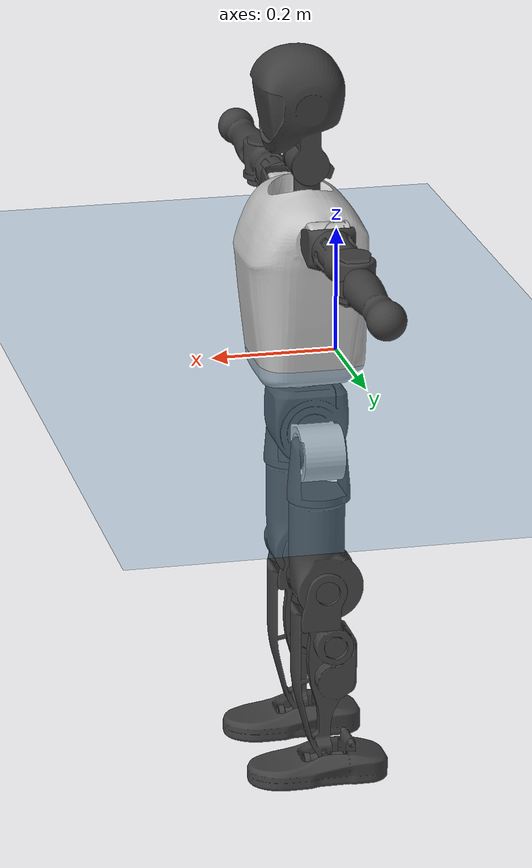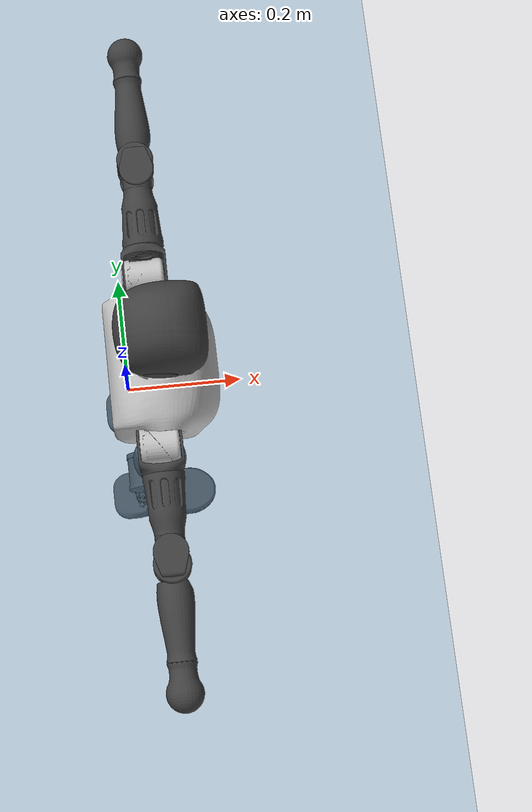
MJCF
<mujoco model="T1">
  <compiler angle="radian" assetdir="assets" balanceinertia="true" inertiafromgeom="false"/>

  <option timestep="0.005" density="1.2" viscosity="2e-05"/>

  <size nkey="1"/>

  <visual>
    <quality shadowsize="8192"/>
    <map shadowclip="0.5"/>
  </visual>

  <default>
    <default class="/">
      <joint armature="0.01" damping="0.01" frictionloss="0.1"/>
      <geom contype="0" conaffinity="0" group="1" solref="-1000 -80"/>
      <site size="0.01 0.005 0.005" group="5"/>
      <general forcelimited="true" biastype="affine" gainprm="25" biasprm="0 -25 -0.6"/>
      <default class="t1">
        <geom rgba="0.25 0.25 0.25 1"/>
        <default class="visual">
          <geom type="mesh" group="2"/>
        </default>
        <default class="collision">
          <geom group="3"/>
        </default>
        <default class="foot">
          <geom size="0.1115 0.05 0.015" type="box" condim="6" group="4" priority="1" solimp="0.015 1 0.015"/>
        </default>
        <default class="reward_collision_sphere">
          <geom group="5" rgba="1 0 0 1"/>
        </default>
      </default>
    </default>
  </default>

  <asset>
    <texture type="skybox" colorspace="auto" name="//unnamed_texture_0" builtin="gradient" rgb1="0.95 0.95 0.95" rgb2="0.95 0.95 0.95" width="100" height="600"/>
    <texture type="2d" colorspace="auto" name="texplane" builtin="checker" rgb1="0.345 0.575 0.748" rgb2="0.345 0.575 0.748" markrgb="1 1 1" width="512" height="512"/>
    <material name="MatPlane" class="/" texture="texplane" texuniform="true" texrepeat="2 2" specular="0.9"/>
    <mesh name="Trunk" class="/" file="Trunk.stl"/>
    <mesh name="H1" class="/" file="H1.stl"/>
    <mesh name="H2" class="/" file="H2.stl"/>
    <mesh name="AL1" class="/" file="AL1.stl"/>
    <mesh name="AL2" class="/" file="AL2.stl"/>
    <mesh name="AL3" class="/" file="AL3.stl"/>
    <mesh name="left_hand_link" class="/" file="left_hand_link.stl"/>
    <mesh name="AR1" class="/" file="AR1.stl"/>
    <mesh name="AR2" class="/" file="AR2.stl"/>
    <mesh name="AR3" class="/" file="AR3.stl"/>
    <mesh name="right_hand_link" class="/" file="right_hand_link.stl"/>
    <mesh name="Waist" class="/" file="Waist.stl"/>
    <mesh name="Hip_Pitch_Left" class="/" file="Hip_Pitch_Left.stl"/>
    <mesh name="Hip_Roll_Left" class="/" file="Hip_Roll_Left.stl"/>
    <mesh name="Hip_Yaw_Left" class="/" file="Hip_Yaw_Left.stl"/>
    <mesh name="Shank_Left" class="/" file="Shank_Left.stl"/>
    <mesh name="Ankle_Cross_Left" class="/" file="Ankle_Cross_Left.stl"/>
    <mesh name="left_foot_link" class="/" file="left_foot_link.stl"/>
    <mesh name="Hip_Pitch_Right" class="/" file="Hip_Pitch_Right.stl"/>
    <mesh name="Hip_Roll_Right" class="/" file="Hip_Roll_Right.stl"/>
    <mesh name="Hip_Yaw_Right" class="/" file="Hip_Yaw_Right.stl"/>
    <mesh name="Shank_Right" class="/" file="Shank_Right.stl"/>
    <mesh name="Ankle_Cross_Right" class="/" file="Ankle_Cross_Right.stl"/>
    <mesh name="right_foot_link" class="/" file="right_foot_link.stl"/>
  </asset>

  <worldbody>
    <geom name="floor" class="/" size="100 100 0.125" type="plane" group="0" material="MatPlane"/>
    <light name="toplight_shadow" class="/" pos="0 0 5" dir="0.0990148 0.0990148 -0.990148" type="directional" ambient="0.04 0.04 0.04" diffuse="0.55 0.55 0.55" specular="0.12 0.12 0.12"/>
    <light name="toplight_fill" class="/" pos="0 0 5" dir="0.0990148 0.0990148 -0.990148" type="directional" castshadow="false" ambient="0.04 0.04 0.04" diffuse="0.3 0.3 0.3" specular="0.08 0.08 0.08"/>
    <body name="trunk" childclass="t1" pos="0.000627431 -0.00172351 8.83167e-05" quat="1 -8.3254e-05 0.000133206 0.000103091">
      <inertial pos="0.0412534 0.000275246 0.106865" quat="0.999936 0.000441323 -0.0111956 0.00125397" mass="7.72967" diaginertia="0.0218202 0.040012 0.0611391"/>
      <joint name="//unnamed_joint_0" type="free" armature="0" damping="0" frictionloss="0"/>
      <geom name="//unnamed_geom_1" class="visual" rgba="0.76 0.76 0.76 1" mesh="Trunk"/>
      <geom name="//unnamed_geom_2" class="collision" size="0.0662032 0.0882709 0.132406" pos="0.0451766 0 0.122462" type="box"/>
      <geom name="//unnamed_geom_3" class="reward_collision_sphere" size="0.101511" pos="0.0451766 0 0.102051"/>
      <geom name="//unnamed_geom_4" class="reward_collision_sphere" size="0.0132406" pos="0.0451766 0.0743469 0"/>
      <geom name="//unnamed_geom_5" class="reward_collision_sphere" size="0.0132406" pos="0.0451766 -0.0743469 0"/>
      <geom name="//unnamed_geom_6" class="reward_collision_sphere" size="0.0132406" pos="0.0451766 0.0935896 0.183692"/>
      <geom name="//unnamed_geom_7" class="reward_collision_sphere" size="0.0132406" pos="0.0451766 -0.0935896 0.183692"/>
      <site name="imu" pos="-0.00352305 -0.0111639 0.00245548" size="0.00882709"/>
      <camera name="track" pos="0 -1.74934 0" quat="0.707107 0.707107 0 0" mode="trackcom"/>
      <camera name="ego_camera" pos="0.091859 0 0.428616" quat="-0.5 -0.5 0.5 0.5"/>
      <body name="H1" pos="0.0459315 2.54054e-05 0.247721" quat="1 -5.39608e-06 -8.40907e-06 -4.76034e-05">
        <inertial pos="-0.001431 -0.00113591 0.0590408" quat="0.76307 -0.00237452 -0.00532546 0.64629" mass="0.299812" diaginertia="5.73968e-05 0.000114671 0.000163246"/>
        <joint name="AAHead_yaw" pos="0 0 0" axis="0.00848663 0.00710145 0.999939" stiffness="0.00302758" range="-1.58621 1.56137" armature="0.00892207" damping="0.0106456" frictionloss="0.083099"/>
        <geom name="//unnamed_geom_8" class="visual" mesh="H1"/>
        <body name="H2" pos="0.00124965 0.000352876 0.062795" quat="1 -1.96061e-05 2.88707e-05 -0.000103953">
          <inertial pos="0.00554011 -0.00175137 0.100998" quat="0.988165 0.105176 -0.0761263 -0.0816873" mass="0.425197" diaginertia="0.000486329 0.000934694 0.00187273"/>
          <joint name="Head_pitch" pos="0 0 0" axis="0.00495406 -0.999962 0.0071166" range="-1.21168 0.348808" armature="0.00851221" damping="0.00584502" frictionloss="0.0917994"/>
          <geom name="//unnamed_geom_9" class="visual" mesh="H2"/>
          <geom name="//unnamed_geom_10" class="collision" size="0.0706167" pos="0.00752943 0 0.112257"/>
          <geom name="//unnamed_geom_11" class="reward_collision_sphere" size="0.0794438" pos="0.0150589 0 0.102051"/>
        </body>
      </body>
      <body name="AL1" pos="0.0455632 0.0938871 0.223" quat="1 -0.000306035 0.000371183 -0.000382333">
        <inertial pos="-0.000755921 0.0381509 -0.00254792" quat="0.499766 0.499429 -0.497172 0.503611" mass="0.3759" diaginertia="0.00034009 0.000680214 0.000336705"/>
        <joint name="Left_Shoulder_Pitch" pos="0 0 0" axis="0.00364777 0.999928 0.0114596" range="-3.30867 1.23421" armature="0.00929237" damping="0.00990345" frictionloss="0.0874768"/>
        <geom name="//unnamed_geom_12" class="visual" rgba="0.76 0.76 0.76 1" mesh="AL1"/>
        <body name="AL2" pos="0.00123854 0.0407318 -0.001642" quat="0.999999 0.000670651 -0.000197281 -0.000934312">
          <inertial pos="0.00350711 0.0304972 -0.000105141" quat="0.488004 0.511438 -0.488298 0.511711" mass="0.108224" diaginertia="9.77699e-05 0.000175743 0.000192518"/>
          <joint name="Left_Shoulder_Roll" pos="0 0 0" axis="-0.999918 0.00546921 -0.0116177" range="-1.52559 1.75995" armature="0.00914728" damping="0" frictionloss="0.098291"/>
          <geom name="//unnamed_geom_13" class="visual" mesh="AL2"/>
          <body name="AL3" pos="0.00208933 0.0558933 0.000887533" quat="0.999999 -0.000904535 0.000558645 5.62663e-05">
            <inertial pos="-0.000331951 0.0727002 0.000644025" quat="0.707014 0.707199 -0.00110465 1.48569e-05" mass="0.724709" diaginertia="0.00312124 0.00672115 0.000665457"/>
            <joint name="Left_Elbow_Pitch" pos="0 0 0" axis="0.00797213 -0.999966 -0.00212281" range="-2.22111 2.21755" armature="0.0099121" damping="0" frictionloss="0.0947035"/>
            <geom name="//unnamed_geom_14" class="visual" mesh="AL3"/>
            <geom name="//unnamed_geom_15" class="collision" size="0.0264813 0.0662032" pos="0 0.0437335 0" quat="0.707105 0.707108 0 0" type="cylinder"/>
            <geom name="//unnamed_geom_16" class="reward_collision_sphere" size="0.0317775"/>
            <body name="left_hand_link" pos="0.000683445 0.128999 -0.00138989" quat="1 -0.000285553 0.000314355 0.000165162">
              <inertial pos="-0.000196217 0.095836 -0.00126367" quat="0.708056 0.706156 -0.000193179 -5.1146e-05" mass="0.225259" diaginertia="0.00196425 0.0041773 0.00023482"/>
              <joint name="Left_Elbow_Yaw" pos="0 0 0" axis="0.00161696 0.00751614 0.99997" stiffness="0.000905266" range="-2.4452 0.00628257" armature="0.00934432" damping="0.012357" frictionloss="0.0898928"/>
              <geom name="//unnamed_geom_17" class="visual" mesh="left_hand_link"/>
              <geom name="//unnamed_geom_18" class="collision" size="0.0264813 0.077237" pos="0 0.113707 0" quat="0.707105 0.707108 0 0" type="cylinder"/>
              <geom name="//unnamed_geom_19" class="reward_collision_sphere" size="0.0441354"/>
              <geom name="//unnamed_geom_20" class="reward_collision_sphere" size="0.0308948" pos="0 0.0962136 0"/>
              <geom name="//unnamed_geom_21" class="reward_collision_sphere" size="0.0308948" pos="0 0.188054 0"/>
            </body>
          </body>
        </body>
      </body>
      <body name="AR1" pos="0.0434739 -0.0931978 0.223026" quat="1 2.66579e-05 0.000512164 -1.7746e-05">
        <inertial pos="-0.000232259 -0.0418099 0.00226022" quat="0.502376 0.495694 -0.50544 0.496423" mass="0.364124" diaginertia="0.000320662 0.000656016 0.000326271"/>
        <joint name="Right_Shoulder_Pitch" pos="0 0 0" axis="0.000984323 -0.999994 -0.00343728" range="-1.20512 3.3101" armature="0.00860804" damping="0.00112893" frictionloss="0.0844129"/>
        <geom name="//unnamed_geom_22" class="visual" rgba="0.76 0.76 0.76 1" mesh="AR1"/>
        <body name="AR2" pos="9.14112e-05 -0.0382042 0.000178963" quat="1 -0.000296992 0.000145433 4.56347e-05">
          <inertial pos="0.00329858 -0.0332283 -0.0021467" quat="0.511017 0.48763 -0.512259 0.488538" mass="0.108622" diaginertia="9.45493e-05 0.000169119 0.000187992"/>
          <joint name="Right_Shoulder_Roll" pos="0 0 0" axis="-0.999944 -0.0104925 0.00148672" stiffness="0.010172" range="-1.71874 1.61565" armature="0.00893426" damping="0" frictionloss="0.0891915"/>
          <geom name="//unnamed_geom_23" class="visual" mesh="AR2"/>
          <body name="AR3" pos="0.000830148 -0.0535126 -0.000652742" quat="1 5.35612e-05 4.30497e-05 7.58895e-05">
            <inertial pos="-0.00119693 -0.0748613 0.000355621" quat="0.707822 0.706389 0.00110324 -0.00123364" mass="0.6978" diaginertia="0.00308947 0.00657408 0.000681023"/>
            <joint name="Right_Elbow_Pitch" pos="0 0 0" axis="-0.00425091 0.999989 0.00179761" range="-2.27128 2.26278" armature="0.00988307" damping="0.0102369" frictionloss="0.0780044"/>
            <geom name="//unnamed_geom_24" class="visual" mesh="AR3"/>
            <geom name="//unnamed_geom_25" class="collision" size="0.0264813 0.0662032" pos="0 -0.0437335 0" quat="0.707105 0.707108 0 0" type="cylinder"/>
            <geom name="//unnamed_geom_26" class="reward_collision_sphere" size="0.0317775"/>
            <body name="right_hand_link" pos="-0.000465068 -0.128417 -0.000441033" quat="1 -0.000195834 0.000159304 0.00035308">
              <inertial pos="0.000529383 -0.096358 -0.00177693" quat="0.707775 0.70633 -0.0123116 0.000992846" mass="0.232781" diaginertia="0.00192054 0.00415987 0.000239712"/>
              <joint name="Right_Elbow_Yaw" pos="0 0 0" axis="-0.000212204 -0.00013936 1" range="-0.0479265 2.48914" armature="0.00899895" damping="0.012509" frictionloss="0.0836168"/>
              <geom name="//unnamed_geom_27" class="visual" mesh="right_hand_link"/>
              <geom name="//unnamed_geom_28" class="collision" size="0.0264813 0.077237" pos="0 -0.113707 0" quat="0.707105 0.707108 0 0" type="cylinder"/>
              <geom name="//unnamed_geom_29" class="reward_collision_sphere" size="0.0441354"/>
              <geom name="//unnamed_geom_30" class="reward_collision_sphere" size="0.0308948" pos="0 -0.0962136 0"/>
              <geom name="//unnamed_geom_31" class="reward_collision_sphere" size="0.0308948" pos="0 -0.188054 0"/>
            </body>
          </body>
        </body>
      </body>
      <body name="Waist" pos="0.0468889 -0.0011999 -0.118075" quat="1 7.83912e-06 9.91052e-05 7.91966e-05">
        <inertial pos="0.000259073 -0.000393137 0.00764191" quat="0.983643 0.000664885 -0.180109 0.00265302" mass="1.76132" diaginertia="0.0012712 0.00270278 0.00527093"/>
        <joint name="Waist" pos="0 0 0" axis="0.00455773 -0.0108149 0.999931" range="-1.57194 1.56083" armature="0.00845237" damping="0.021979" frictionloss="0.0795901"/>
        <geom name="//unnamed_geom_32" class="visual" mesh="Waist"/>
        <body name="Hip_Pitch_Left" pos="0.00181837 0.0943703 0.000504306" quat="1 1.93724e-05 -0.000174934 0.00023606">
          <inertial pos="0.00318832 -0.0069424 -0.0209225" quat="0.974719 0.221767 0.0272432 0.000681964" mass="0.709503" diaginertia="0.000438888 0.000744282 0.00137126"/>
          <joint name="Left_Hip_Pitch" pos="0 0 0" axis="0.000223093 0.999999 0.00125922" range="-1.7927 1.61769" armature="0.00866301" damping="0" frictionloss="0.0909843"/>
          <geom name="//unnamed_geom_33" class="visual" rgba="0.76 0.76 0.76 1" mesh="Hip_Pitch_Left"/>
          <body name="Hip_Roll_Left" pos="0.00200508 -0.00139508 -0.0186035" quat="1 -0.00011606 0.000194444 -8.53058e-05">
            <inertial pos="0.000263745 0.00184367 -0.0549587" quat="0.705269 -0.00359509 -0.00116483 0.70893" mass="0.252887" diaginertia="0.000421095 0.000736301 0.000550234"/>
            <joint name="Left_Hip_Roll" pos="0 0 0" axis="-0.999986 -0.00500167 0.00188601" range="-1.57107 0.192776" armature="0.00910023" damping="0.00702749" frictionloss="0.0830438"/>
            <geom name="//unnamed_geom_34" class="visual" mesh="Hip_Roll_Left"/>
            <geom name="//unnamed_geom_35" class="reward_collision_sphere" size="0.048549"/>
            <body name="Hip_Yaw_Left" pos="0.000869075 0.000900629 -0.0828395" quat="1 -0.00029518 5.26913e-05 5.41316e-05">
              <inertial pos="-0.00489094 -0.000258061 -0.0910563" quat="0.698604 -0.0328453 -0.0436078 0.713423" mass="1.46073" diaginertia="0.00621989 0.0128896 0.0029043"/>
              <joint name="Left_Hip_Yaw" pos="0 0 0" axis="-0.00932162 0.00309152 -0.999952" range="-1.01131 0.975307" armature="0.00868325" damping="0.00361619" frictionloss="0.0887201"/>
              <geom name="//unnamed_geom_36" class="visual" mesh="Hip_Yaw_Left"/>
              <geom name="//unnamed_geom_37" class="collision" size="0.0441354 0.0706167" type="cylinder"/>
              <body name="Shank_Left" pos="-0.00843044 0.00190308 -0.139531" quat="1 3.96049e-05 -5.33754e-06 2.09153e-05">
                <inertial pos="-0.00540196 -0.00219066 -0.126826" quat="0.997532 0.00175816 -0.0241941 0.0658956" mass="1.1806" diaginertia="0.0086072 0.0176744 0.00210844"/>
                <joint name="Left_Knee_Pitch" pos="0 0 0" axis="-0.00563497 0.999982 -0.00221163" range="-0.00116859 2.34312" armature="0.00842111" damping="0.0106069" frictionloss="0.099835"/>
                <geom name="//unnamed_geom_38" class="visual" mesh="Shank_Left"/>
                <geom name="//unnamed_geom_39" class="collision" size="0.0441354 0.0662032" pos="0 0 -0.122462" type="cylinder"/>
                <geom name="//unnamed_geom_40" class="reward_collision_sphere" size="0.0573761"/>
                <body name="Ankle_Cross_Left" pos="-0.00133198 -0.00150551 -0.287142" quat="1 -3.26521e-05 4.4176e-05 7.9166e-05">
                  <inertial pos="-0.00312745 -0.000321594 -0.00779432" quat="0.44075 0.552389 0.552326 0.442201" mass="0.0479297" diaginertia="6.92739e-06 1.22987e-05 1.21513e-05"/>
                  <joint name="Left_Ankle_Pitch" pos="0 0 0" axis="0.0113004 0.999897 -0.0088096" range="-0.854174 0.369975" armature="0.00883483" damping="0.00767276" frictionloss="0.0893232"/>
                  <geom name="//unnamed_geom_41" class="visual" mesh="Ankle_Cross_Left"/>
                  <body name="left_foot_link" pos="-0.000572625 0.000132165 -0.0124904" quat="0.999999 -0.0013009 0.000314737 0.000104388">
                    <inertial pos="0.00225463 0.000411826 -0.00855078" quat="-0.00422649 0.619492 -0.00778369 0.784953" mass="0.46723" diaginertia="0.000647916 0.00121476 0.00236526"/>
                    <joint name="Left_Ankle_Roll" pos="0 0 0" axis="-0.999993 0.00371377 0.000745518" stiffness="0.0013212" range="-0.434148 0.437276" armature="0.0087774" damping="0.000680436" frictionloss="0.0846194"/>
                    <geom name="//unnamed_geom_42" class="visual" mesh="left_foot_link"/>
                    <geom name="left_foot" class="foot" size="0.105789 0.0418848 0.0121016" pos="0.00752943 0 -0.0153077"/>
                    <geom name="//unnamed_geom_44" class="reward_collision_sphere" size="0.0459009" pos="0.00752943 0 -0.0153077"/>
                    <geom name="//unnamed_geom_45" class="reward_collision_sphere" size="0.0264813" pos="0.0715296 -0.0201174 -0.0153077"/>
                    <geom name="//unnamed_geom_46" class="reward_collision_sphere" size="0.0264813" pos="-0.052706 -0.0201174 -0.0153077"/>
                    <site name="left_foot" class="foot" pos="0.00752943 0 -0.0153077" size="0.00882709"/>
                  </body>
                </body>
              </body>
            </body>
          </body>
        </body>
        <body name="Hip_Pitch_Right" pos="-0.00227263 -0.09286 0.00092866" quat="1 0.000442071 -0.000548788 0.000490943">
          <inertial pos="6.28058e-05 0.00771961 -0.0163739" quat="0.973302 -0.2291 0.0138869 -0.0017137" mass="0.718645" diaginertia="0.000441846 0.000758125 0.00141004"/>
          <joint name="Right_Hip_Pitch" pos="0 0 0" axis="0.00413509 -0.999989 -0.00210471" stiffness="0.0026048" range="-1.57273 1.79145" armature="0.00862892" damping="0.000336263" frictionloss="0.0938909"/>
          <geom name="//unnamed_geom_47" class="visual" rgba="0.76 0.76 0.76 1" mesh="Hip_Pitch_Right"/>
          <body name="Hip_Roll_Right" pos="0.00178476 0.00110786 -0.0200062" quat="1 -1.0229e-05 4.22605e-05 -2.60039e-05">
            <inertial pos="-0.000942435 -0.000313546 -0.0563872" quat="0.707176 -0.00598875 -0.00599638 0.706987" mass="0.270089" diaginertia="0.000420635 0.00077266 0.000570848"/>
            <joint name="Right_Hip_Roll" pos="0 0 0" axis="-0.999989 -0.000556927 0.00471619" stiffness="0.00262412" range="-0.212683 1.58627" armature="0.00884746" damping="0.00514406" frictionloss="0.0881553"/>
            <geom name="//unnamed_geom_48" class="visual" mesh="Hip_Roll_Right"/>
            <geom name="//unnamed_geom_49" class="reward_collision_sphere" size="0.048549"/>
            <body name="Hip_Yaw_Right" pos="-2.30079e-05 -0.000269783 -0.0832332" quat="1 -0.000156043 0.00032939 -2.66301e-05">
              <inertial pos="-0.00484466 -0.00256686 -0.088678" quat="0.716033 -0.034086 -0.0323048 0.696485" mass="1.53963" diaginertia="0.00626188 0.0135581 0.00287417"/>
              <joint name="Right_Hip_Yaw" pos="0 0 0" axis="-0.00050693 0.00182963 -0.999998" stiffness="0.0100493" range="-0.989282 1.00057" armature="0.00769817" damping="0.00203002" frictionloss="0.0915318"/>
              <geom name="//unnamed_geom_50" class="visual" mesh="Hip_Yaw_Right"/>
              <geom name="//unnamed_geom_51" class="collision" size="0.0441354 0.0706167" type="cylinder"/>
              <body name="Shank_Right" pos="-0.00797346 -0.000893024 -0.136477" quat="1 -4.52875e-05 -3.92744e-05 -1.96019e-05">
                <inertial pos="-0.00202014 0.00231876 -0.126135" quat="0.999161 0.000633111 -0.0196034 -0.0359532" mass="1.26985" diaginertia="0.00907015 0.0186614 0.00223837"/>
                <joint name="Right_Knee_Pitch" pos="0 0 0" axis="0.00466397 -0.999987 -0.00190703" range="-2.34012 -0.00566978" armature="0.00835355" damping="0.00472371" frictionloss="0.0872697"/>
                <geom name="//unnamed_geom_52" class="visual" mesh="Shank_Right"/>
                <geom name="//unnamed_geom_53" class="collision" size="0.0441354 0.0662032" pos="0 0 -0.122462" type="cylinder"/>
                <geom name="//unnamed_geom_54" class="reward_collision_sphere" size="0.0573761"/>
                <body name="Ankle_Cross_Right" pos="0.000967396 -0.00142648 -0.285726" quat="1 -1.64917e-05 0.000392191 0.000266362">
                  <inertial pos="-0.00375911 0.000639638 -0.00786823" quat="0.443282 0.550964 0.550982 0.443124" mass="0.0492381" diaginertia="7.1371e-06 1.30854e-05 1.24929e-05"/>
                  <joint name="Right_Ankle_Pitch" pos="0 0 0" axis="0.0141466 -0.999897 -0.00261741" range="-0.331645 0.877936" armature="0.00851894" damping="0.00337723" frictionloss="0.0837289"/>
                  <geom name="//unnamed_geom_55" class="visual" mesh="Ankle_Cross_Right"/>
                  <body name="right_foot_link" pos="0.000404317 -0.00287416 -0.0106478" quat="1 -0.000243307 -3.52603e-05 0.000145432">
                    <inertial pos="0.00251792 7.2855e-05 -0.00847055" quat="-0.00479475 0.621005 0.00588096 0.78377" mass="0.47243" diaginertia="0.000672787 0.00121045 0.00241961"/>
                    <joint name="Right_Ankle_Roll" pos="0 0 0" axis="-0.999938 -0.00659038 -0.00902961" range="-0.442975 0.455212" armature="0.00848311" damping="0.00363844" frictionloss="0.077584"/>
                    <geom name="//unnamed_geom_56" class="visual" mesh="right_foot_link"/>
                    <geom name="right_foot" class="foot" size="0.100096 0.0418257 0.0129242" pos="0.00752943 0 -0.0153077"/>
                    <geom name="//unnamed_geom_58" class="reward_collision_sphere" size="0.0353083"/>
                    <geom name="//unnamed_geom_59" class="reward_collision_sphere" size="0.0264813" pos="0.00752943 0 -0.0153077"/>
                    <geom name="//unnamed_geom_60" class="reward_collision_sphere" size="0.0264813" pos="0.0715296 0.0201174 -0.0153077"/>
                    <geom name="//unnamed_geom_61" class="reward_collision_sphere" size="0.0264813" pos="-0.052706 0.0201174 -0.0153077"/>
                    <site name="right_foot" class="foot" pos="0.00752943 0 -0.0153077" size="0.00882709"/>
                  </body>
                </body>
              </body>
            </body>
          </body>
        </body>
      </body>
    </body>
  </worldbody>

  <contact>
    <pair class="/" geom1="floor" geom2="left_foot" name="//unnamed_contact_0"/>
    <pair class="/" geom1="floor" geom2="right_foot" name="//unnamed_contact_1"/>
  </contact>

  <actuator>
    <general name="AAHead_yaw" class="/" joint="AAHead_yaw" forcerange="-5.67864 5.67864" gainprm="22.6035" biasprm="0 -22.6035 -0.504817"/>
    <general name="Head_pitch" class="/" joint="Head_pitch" forcerange="-5.98901 5.98901" gainprm="22.6035" biasprm="0 -22.6035 -0.504817"/>
    <general name="Left_Shoulder_Pitch" class="/" joint="Left_Shoulder_Pitch" forcerange="-15.8716 15.8716" gainprm="22.6035" biasprm="0 -22.6035 -0.504817"/>
    <general name="Left_Shoulder_Roll" class="/" joint="Left_Shoulder_Roll" forcerange="-15.3087 15.3087" gainprm="22.6035" biasprm="0 -22.6035 -0.504817"/>
    <general name="Left_Elbow_Pitch" class="/" joint="Left_Elbow_Pitch" forcerange="-16.9154 16.9154" gainprm="22.6035" biasprm="0 -22.6035 -0.504817"/>
    <general name="Left_Elbow_Yaw" class="/" joint="Left_Elbow_Yaw" forcerange="-17.5342 17.5342" gainprm="22.6035" biasprm="0 -22.6035 -0.504817"/>
    <general name="Right_Shoulder_Pitch" class="/" joint="Right_Shoulder_Pitch" forcerange="-16.0585 16.0585" gainprm="22.6035" biasprm="0 -22.6035 -0.504817"/>
    <general name="Right_Shoulder_Roll" class="/" joint="Right_Shoulder_Roll" forcerange="-16.8615 16.8615" gainprm="22.6035" biasprm="0 -22.6035 -0.504817"/>
    <general name="Right_Elbow_Pitch" class="/" joint="Right_Elbow_Pitch" forcerange="-16.3137 16.3137" gainprm="22.6035" biasprm="0 -22.6035 -0.504817"/>
    <general name="Right_Elbow_Yaw" class="/" joint="Right_Elbow_Yaw" forcerange="-14.9044 14.9044" gainprm="22.6035" biasprm="0 -22.6035 -0.504817"/>
    <general name="Waist" class="/" joint="Waist" forcerange="-26.5304 26.5304" gainprm="22.6035" biasprm="0 -22.6035 -0.504817"/>
    <general name="Left_Hip_Pitch" class="/" joint="Left_Hip_Pitch" forcerange="-40.3775 40.3775" gainprm="22.6035" biasprm="0 -22.6035 -0.504817"/>
    <general name="Left_Hip_Roll" class="/" joint="Left_Hip_Roll" forcerange="-26.6828 26.6828" gainprm="22.6035" biasprm="0 -22.6035 -0.504817"/>
    <general name="Left_Hip_Yaw" class="/" joint="Left_Hip_Yaw" forcerange="-25.5144 25.5144" gainprm="22.6035" biasprm="0 -22.6035 -0.504817"/>
    <general name="Left_Knee_Pitch" class="/" joint="Left_Knee_Pitch" forcerange="-52.7252 52.7252" gainprm="22.6035" biasprm="0 -22.6035 -0.504817"/>
    <general name="Left_Ankle_Pitch" class="/" joint="Left_Ankle_Pitch" forcerange="-16.952 16.952" gainprm="22.6035" biasprm="0 -22.6035 -0.504817"/>
    <general name="Left_Ankle_Roll" class="/" joint="Left_Ankle_Roll" forcerange="-13.2828 13.2828" gainprm="22.6035" biasprm="0 -22.6035 -0.504817"/>
    <general name="Right_Hip_Pitch" class="/" joint="Right_Hip_Pitch" forcerange="-38.8816 38.8816" gainprm="22.6035" biasprm="0 -22.6035 -0.504817"/>
    <general name="Right_Hip_Roll" class="/" joint="Right_Hip_Roll" forcerange="-26.6046 26.6046" gainprm="22.6035" biasprm="0 -22.6035 -0.504817"/>
    <general name="Right_Hip_Yaw" class="/" joint="Right_Hip_Yaw" forcerange="-27.0974 27.0974" gainprm="22.6035" biasprm="0 -22.6035 -0.504817"/>
    <general name="Right_Knee_Pitch" class="/" joint="Right_Knee_Pitch" forcerange="-52.9782 52.9782" gainprm="22.6035" biasprm="0 -22.6035 -0.504817"/>
    <general name="Right_Ankle_Pitch" class="/" joint="Right_Ankle_Pitch" forcerange="-16.6524 16.6524" gainprm="22.6035" biasprm="0 -22.6035 -0.504817"/>
    <general name="Right_Ankle_Roll" class="/" joint="Right_Ankle_Roll" forcerange="-13.491 13.491" gainprm="22.6035" biasprm="0 -22.6035 -0.504817"/>
  </actuator>

  <sensor>
    <gyro site="imu" name="imu_angular_velocity"/>
    <velocimeter site="imu" name="imu_linear_velocity"/>
    <framelinvel objtype="site" objname="left_foot" name="left_foot_global_linear_velocity"/>
    <framelinvel objtype="site" objname="right_foot" name="right_foot_global_linear_velocity"/>
  </sensor>

  <keyframe>
    <key name="home" qpos="0 0 0.6385 1 0 0 0 0 0 0 1.4 0 -0.4 0 -1.4 0 0.4 0 -0.4 0 0 0.8 -0.4 0 0.4 0 0 -0.8 0.4 0"/>
  </keyframe>
</mujoco>
